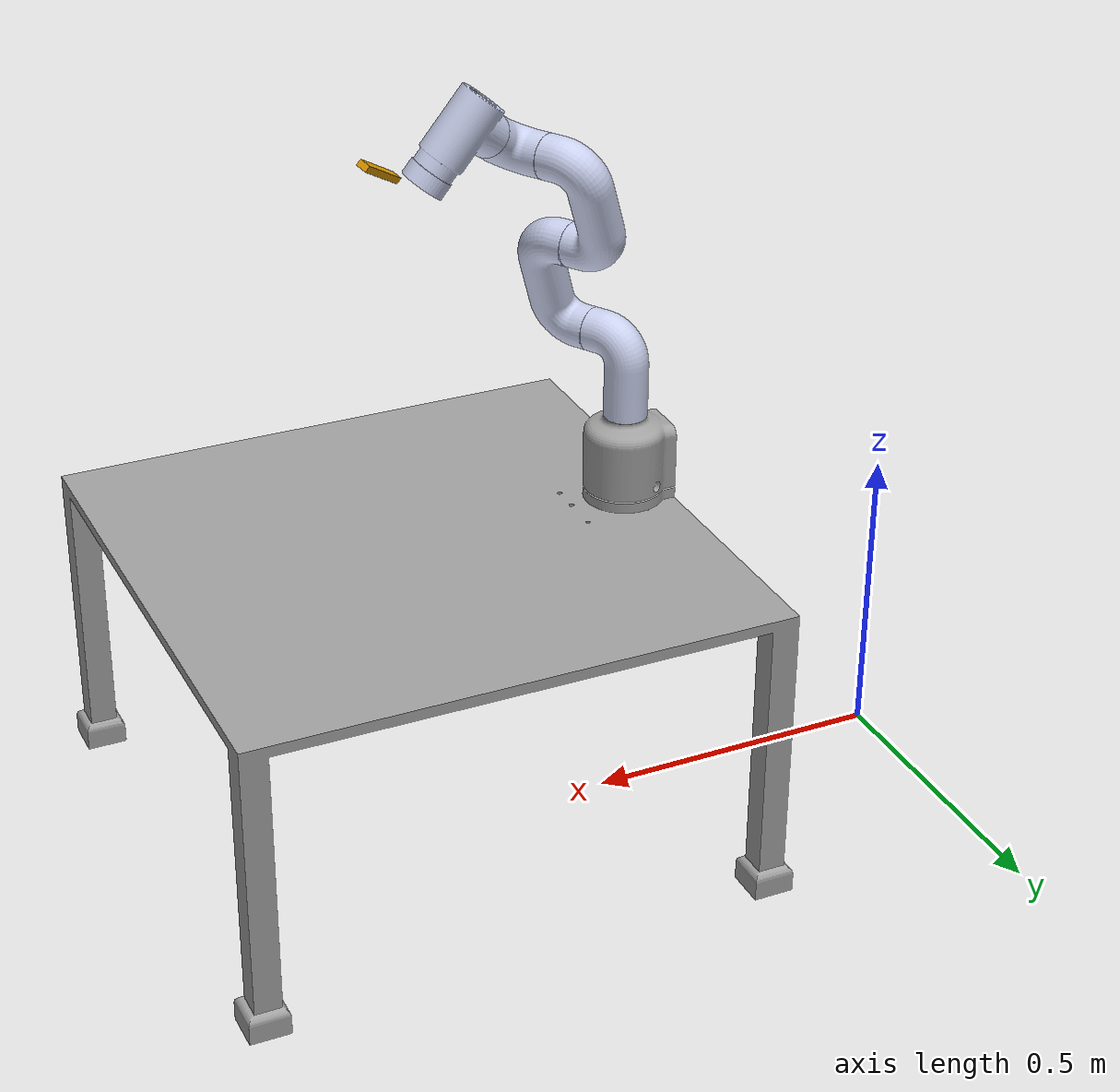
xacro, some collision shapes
<?xml version="1.0" encoding="utf-8"?>
<robot xmlns:xacro="http://www.ros.org/wiki/xacro" name="mycobot280">

  <xacro:include filename="$(find mycobot280)/urdf/robot.gazebo.xacro"/>
  <xacro:include filename="$(find mycobot280)/urdf/robot.ros2_control.xacro"/>
  <xacro:include filename="$(find mycobot280)/urdf/camera.gazebo.xacro"/>

    <link name="world"></link>
    <joint name="virtual_joint" type="fixed">
        <parent link="world"/>
        <child link="base_link"/>
        <origin xyz="0.0 0.0 0.0" rpy="0.0 0.0 0.0"/>
    </joint>

  <link
    name="base_link">
    <inertial>
      <origin
        xyz="0.597155713392048 0.177046269057962 0.492460531154189"
        rpy="0 0 0" />
      <mass
        value="28.8315131648907" />
      <inertia
        ixx="3.66288429819612"
        ixy="5.34809228731864E-05"
        ixz="-5.04602605076265E-05"
        iyy="6.08513922771432"
        iyz="0.00012124727749975"
        izz="3.66225912790203" />
    </inertial>
    <visual>
      <origin
        xyz="0 0 0"
        rpy="0 0 0" />
      <geometry>
        <mesh
          filename="package://mycobot280/meshes/base_link.STL" />
      </geometry>
      <material
        name="">
        <color
          rgba="0.627450980392157 0.627450980392157 0.627450980392157 1" />
      </material>
    </visual>
    <collision>
      <origin
        xyz="0 0 0"
        rpy="0 0 0" />
      <geometry>
        <mesh
          filename="package://mycobot280/meshes/base_link.STL" />
      </geometry>
    </collision>
  </link>
  <link
    name="Link1">
    <inertial>
      <origin
        xyz="0.012700608827981 0.0958546152581273 -1.45325140810115E-11"
        rpy="0 0 0" />
      <mass
        value="1.02219998549708" />
      <inertia
        ixx="0.00315571393423137"
        ixy="-0.000708891379079964"
        ixz="1.11853484374008E-12"
        iyy="0.00119939313883489"
        iyz="-2.7478833011102E-13"
        izz="0.00353763323761046" />
    </inertial>
    <visual>
      <origin
        xyz="0 0 0"
        rpy="0 0 0" />
      <geometry>
        <mesh
          filename="package://mycobot280/meshes/Link1.STL" />
      </geometry>
      <material
        name="">
        <color
          rgba="0.792156862745098 0.819607843137255 0.933333333333333 1" />
      </material>
    </visual>
    <collision>
      <origin
        xyz="0 0 0"
        rpy="0 0 0" />
      <geometry>
        <mesh
          filename="package://mycobot280/meshes/Link1.STL" />
      </geometry>
    </collision>
  </link>
  <joint
    name="J1"
    type="revolute">
    <origin
      xyz="0.21679 -0.50149 0.40633"
      rpy="1.5708 0 -1.0372" />
    <parent
      link="base_link" />
    <child
      link="Link1" />
    <axis
      xyz="0 1 0" />
    <limit
      lower="0"
      upper="6.28"
      effort="100"
      velocity="10" />
  </joint>
  <link
    name="Link_2">
    <inertial>
      <origin
        xyz="-0.11106872895544 0.100000000020283 -6.19547191327285E-11"
        rpy="0 0 0" />
      <mass
        value="1.5414487133758" />
      <inertia
        ixx="0.00997787485806034"
        ixy="-6.86029331216018E-13"
        ixz="6.49076582412422E-12"
        iyy="0.00188553413438129"
        iyz="-3.49583107958368E-12"
        izz="0.0106308542322907" />
    </inertial>
    <visual>
      <origin
        xyz="0 0 0"
        rpy="0 0 0" />
      <geometry>
        <mesh
          filename="package://mycobot280/meshes/Link_2.STL" />
      </geometry>
      <material
        name="">
        <color
          rgba="0.792156862745098 0.819607843137255 0.933333333333333 1" />
      </material>
    </visual>
    <collision>
      <origin
        xyz="0 0 0"
        rpy="0 0 0" />
      <geometry>
        <mesh
          filename="package://mycobot280/meshes/Link_2.STL" />
      </geometry>
    </collision>
  </link>
  <joint
    name="J2"
    type="revolute">
    <origin
      xyz="0.022144 0.15001 0"
      rpy="3.5 0 -3.1416" />
    <parent
      link="Link1" />
    <child
      link="Link_2" />
    <axis
      xyz="1 0 0" />
    <limit
      lower="0"
      upper="6.28"
      effort="100"
      velocity="10" />
  </joint>
  <link
    name="Link_3">
    <inertial>
      <origin
        xyz="-0.00535599354300342 0.0999999999743382 -6.60289600773467E-11"
        rpy="0 0 0" />
      <mass
        value="1.54144871457666" />
      <inertia
        ixx="0.00997787486640406"
        ixy="2.17809067494263E-12"
        ixz="6.85228956909256E-12"
        iyy="0.00188553413619418"
        iyz="-3.52715093596004E-12"
        izz="0.0106308542401701" />
    </inertial>
    <visual>
      <origin
        xyz="0 0 0"
        rpy="0 0 0" />
      <geometry>
        <mesh
          filename="package://mycobot280/meshes/Link_3.STL" />
      </geometry>
      <material
        name="">
        <color
          rgba="0.792156862745098 0.819607843137255 0.933333333333333 1" />
      </material>
    </visual>
    <collision>
      <origin
        xyz="0 0 0"
        rpy="0 0 0" />
      <geometry>
        <mesh
          filename="package://mycobot280/meshes/Link_3.STL" />
      </geometry>
    </collision>
  </link>
  <joint
    name="J3"
    type="revolute">
    <origin
      xyz="0 0.2 0"
      rpy="3.11 0 3.1416" />
    <parent
      link="Link_2" />
    <child
      link="Link_3" />
    <axis
      xyz="1 0 0" />
    <limit
      lower="-0.1"
      upper="6.28"
      effort="10"
      velocity="10" />
  </joint>
  <link
    name="Link_4">
    <inertial>
      <origin
        xyz="0.0200907550393342 0.115283429866356 -8.19361245518735E-11"
        rpy="0 0 0" />
      <mass
        value="0.644009700451858" />
      <inertia
        ixx="0.000798882316064304"
        ixy="-0.000265729984228485"
        ixz="8.42664019074998E-13"
        iyy="0.000798882317590405"
        iyz="-1.35001810620296E-12"
        izz="0.00108316109744404" />
    </inertial>
    <visual>
      <origin
        xyz="0 0 0"
        rpy="0 0 0" />
      <geometry>
        <mesh
          filename="package://mycobot280/meshes/Link_4.STL" />
      </geometry>
      <material
        name="">
        <color
          rgba="0.792156862745098 0.819607843137255 0.933333333333333 1" />
      </material>
    </visual>
    <collision>
      <origin
        xyz="0 0 0"
        rpy="0 0 0" />
      <geometry>
        <mesh
          filename="package://mycobot280/meshes/Link_4.STL" />
      </geometry>
    </collision>
  </link>
  <joint
    name="J4"
    type="revolute">
    <origin
      xyz="-0.0075178 0.2 0"
      rpy="3.1416 0.60251 1.5708" />
    <parent
      link="Link_3" />
    <child
      link="Link_4" />
    <axis
      xyz="0 1 0" />
    <limit
      lower="-0.1"
      upper="6.28"
      effort="10"
      velocity="10" />
  </joint>
  <link
    name="Link_5">
    <inertial>
      <origin
        xyz="3.74508736356027E-07 -0.0179815516058093 -0.115015418494217"
        rpy="0 0 0" />
      <mass
        value="0.994215195816849" />
      <inertia
        ixx="0.00238118437786452"
        ixy="-1.04588150718135E-08"
        ixz="-9.8178415389367E-09"
        iyy="0.00129650774015142"
        iyz="-0.000189644796085368"
        izz="0.00197040966521599" />
    </inertial>
    <visual>
      <origin
        xyz="0 0 0"
        rpy="0 0 0" />
      <geometry>
        <mesh
          filename="package://mycobot280/meshes/Link_5.STL" />
      </geometry>
      <material
        name="">
        <color
          rgba="0.792156862745098 0.819607843137255 0.933333333333333 1" />
      </material>
    </visual>
    <collision>
      <origin
        xyz="0 0 0"
        rpy="0 0 0" />
      <geometry>
        <mesh
          filename="package://mycobot280/meshes/Link_5.STL" />
      </geometry>
    </collision>
  </link>
  <joint
    name="J5"
    type="revolute">
    <origin
      xyz="0.024376 0.13537 0"
      rpy="1.5708 -3.50212 -1.5708" />
    <parent
      link="Link_4" />
    <child
      link="Link_5" />
    <axis
      xyz="0 0 1" />
    <limit
      lower="-0.1"
      upper="6.28"
      effort="10"
      velocity="10" />
  </joint>
  <link
    name="Link_6">
    <inertial>
      <origin
        xyz="-5.55111512312578E-16 0.00435780524768226 -2.22044604925031E-16"
        rpy="0 0 0" />
      <mass
        value="0.14451326206513" />
      <inertia
        ixx="6.89175505799182E-05"
        ixy="-6.37392292808861E-20"
        ixz="-8.470329472543E-22"
        iyy="0.000116631627264521"
        iyz="-2.14299335655338E-19"
        izz="6.89175505799182E-05" />
    </inertial>
    <visual>
      <origin
        xyz="0 0 0"
        rpy="0 0 0" />
      <geometry>
        <mesh
          filename="package://mycobot280/meshes/Link_6.STL" />
      </geometry>
      <material
        name="">
        <color
          rgba="0.792156862745098 0.819607843137255 0.933333333333333 1" />
      </material>
    </visual>
    <collision>
      <origin
        xyz="0 0 0"
        rpy="0 0 0" />
      <geometry>
        <mesh
          filename="package://mycobot280/meshes/Link_6.STL" />
      </geometry>
    </collision>
  </link>
  <joint
    name="J6"
    type="revolute">
    <origin
      xyz="0 -0.10771 -0.12562"
      rpy="0 1.3641 3.1416" />
    <parent
      link="Link_5" />
    <child
      link="Link_6" />
    <axis
      xyz="0 1 0" />
    <limit
      lower="0"
      upper="6.28"
      effort="10"
      velocity="10" />
  </joint>

  <link name="camera_link">
        <visual>
          <origin xyz="0 0 0" rpy="1.57 0 1.57"/>
          <geometry>
            <mesh filename="package://mycobot280/urdf/r200.dae" scale="3 3 3"/>
          </geometry>
        </visual>
        <collision>
          <origin xyz="0.003 0.065 0.007" rpy="0 0 0"/>
          <geometry>
            <box size="0.012 0.132 0.020"/>
          </geometry>
        </collision>
      </link>

      <joint name="camera_mount_joint" type="fixed">
        <parent link="Link_6"/>
        <child link="camera_link"/>
        <!-- Adjust these values to position the camera forward-facing above the gripper -->
        <origin xyz="0.2 0.025 -0.025" rpy="0 0 1.57"/>
      </joint>
      <xacro:depth_cam/>
</robot>
